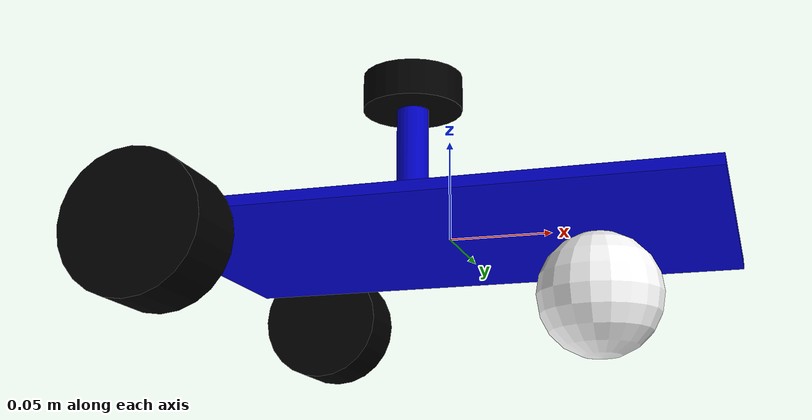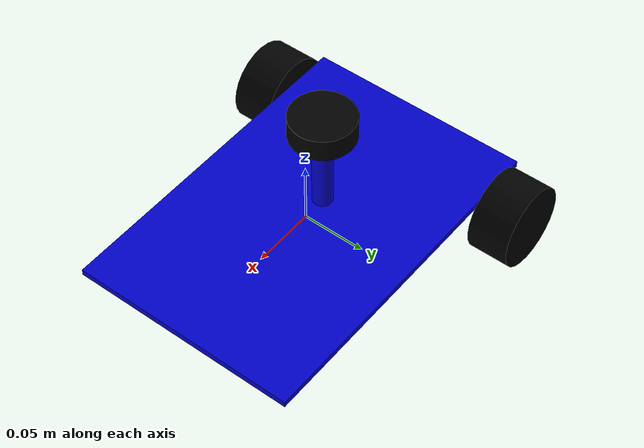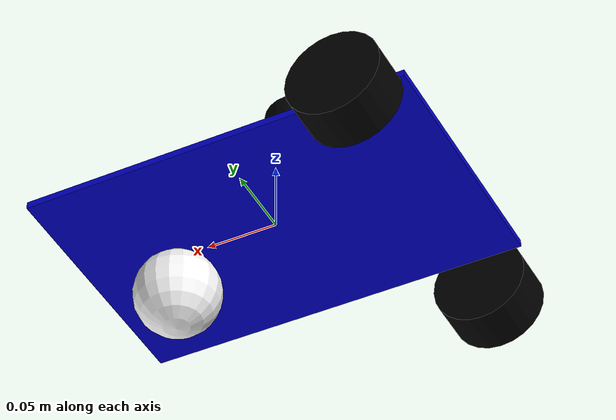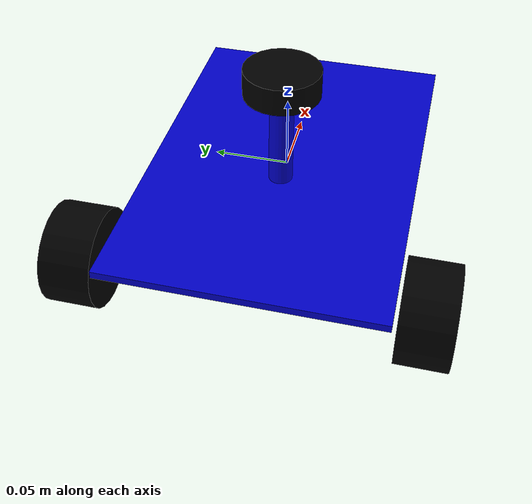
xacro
<?xml version="1.0"?>
<robot name="simple_diff_bot" xmlns:xacro="http://www.ros.org/wiki/xacro">

  <material name="blue"> <color rgba="0 0 0.8 1"/> </material>
  <material name="black"> <color rgba="0 0 0 1"/> </material>
  <material name="white"> <color rgba="1 1 1 1"/> </material>

  <link name="base_link">
    <visual>
      <geometry>
        <box size="0.2707 0.18 0.005"/>
      </geometry>
      <material name="blue"/>
    </visual>
    <collision>
      <geometry>
        <box size="0.2707 0.18 0.005"/>
      </geometry>
    </collision>
    <inertial>
      <mass value="5.0"/>
      <inertia ixx="0.0416" ixy="0" ixz="0" iyy="0.0708" iyz="0" izz="0.1041"/>
    </inertial>
  </link>

  <link name="left_wheel">
    <visual>
      <origin rpy="1.5708 0 0" xyz="0 0 0"/> <geometry>
        <cylinder radius="0.0325" length="0.033"/>
      </geometry>
      <material name="black"/>
    </visual>
    <collision>
      <origin rpy="1.5708 0 0" xyz="0 0 0"/>
      <geometry>
        <cylinder radius="0.0325" length="0.033"/>
      </geometry>
    </collision>
    <inertial>
      <mass value="0.5"/>
      <inertia ixx="0.00037" ixy="0" ixz="0" iyy="0.00037" iyz="0" izz="0.000625"/>
    </inertial>
  </link>

  <joint name="left_wheel_joint" type="continuous">
    <parent link="base_link"/>
    <child link="left_wheel"/>
    <origin xyz="-0.10285 0.109 -0.0165" rpy="0 0 0"/> <axis xyz="0 1 0"/>
  </joint>

  <link name="right_wheel">
    <visual>
      <origin rpy="1.5708 0 0" xyz="0 0 0"/>
      <geometry>
        <cylinder radius="0.0325" length="0.033"/>
      </geometry>
      <material name="black"/>
    </visual>
    <collision>
      <origin rpy="1.5708 0 0" xyz="0 0 0"/>
      <geometry>
        <cylinder radius="0.0325" length="0.033"/>
      </geometry>
    </collision>
    <inertial>
      <mass value="0.5"/>
      <inertia ixx="0.00037" ixy="0" ixz="0" iyy="0.00037" iyz="0" izz="0.000625"/>
    </inertial>
  </link>

  <joint name="right_wheel_joint" type="continuous">
    <parent link="base_link"/>
    <child link="right_wheel"/>
    <origin xyz="-0.10285 -0.109 -0.0165" rpy="0 0 0"/> <axis xyz="0 1 0"/>
  </joint>

  <link name="caster_wheel">
    <visual>
      <geometry>
        <sphere radius="0.03"/>
      </geometry>
      <material name="white"/>
    </visual>
    <collision>
      <geometry>
        <sphere radius="0.025"/>
      </geometry>
    </collision>
    <inertial>
      <mass value="0.2"/>
      <inertia ixx="0.0002" ixy="0" ixz="0" iyy="0.0002" iyz="0" izz="0.0002"/>
    </inertial>
  </link>

  <joint name="caster_joint" type="fixed">
    <parent link="base_link"/>
    <child link="caster_wheel"/>
    <origin xyz="0.072 0 -0.0315" rpy="0 0 0"/>
  </joint>

    <link name="laser_cylinder_link">
    <visual>
      <origin rpy="0 0 0" xyz="0 0 0"/> <geometry>
        <cylinder radius="0.008" length="0.066"/>
      </geometry>
      <material name="blue"/>
    </visual>
    <collision>
      <origin rpy="0 0 0" xyz="0 0 0"/>
      <geometry>
        <cylinder radius="0.008" length="0.066"/>
      </geometry>
    </collision>
    <inertial>
      <mass value="0.5"/>
      <inertia ixx="0.00037" ixy="0" ixz="0" iyy="0.00037" iyz="0" izz="0.000625"/>
    </inertial>
  </link>

  <joint name="laser_cylinder_joint" type="fixed">
    <parent link="base_link"/>
    <child link="laser_cylinder_link"/>
    <origin xyz="-0.01935 0 0.0355" rpy="0 0 0"/> <axis xyz="0 1 0"/>
  </joint>

      <link name="laser_link">
    <visual>
      <origin rpy="0 0 0" xyz="0 0 0"/> <geometry>
        <cylinder radius="0.025" length="0.018"/>
      </geometry>
      <material name="black"/>
    </visual>
    <collision>
      <origin rpy="0 0 0" xyz="0 0 0"/>
      <geometry>
        <cylinder radius="0.025" length="0.018"/>
      </geometry>
    </collision>
    <inertial>
      <mass value="0.5"/>
      <inertia ixx="0.00037" ixy="0" ixz="0" iyy="0.00037" iyz="0" izz="0.000625"/>
    </inertial>
  </link>

  <joint name="laser_joint" type="fixed">
    <parent link="laser_cylinder_link"/>
    <child link="laser_link"/>
    <origin xyz="0 0 0.042" rpy="0 0 0"/> <axis xyz="0 1 0"/>
  </joint>

  <gazebo>
    <plugin
      filename="gz-sim-diff-drive-system"
      name="gz::sim::systems::DiffDrive">
      <left_joint>left_wheel_joint</left_joint>
      <right_joint>right_wheel_joint</right_joint>

      <wheel_separation>0.34</wheel_separation>
      <wheel_radius>0.035</wheel_radius>

      <topic>cmd_vel</topic>

      <odom_topic>odom</odom_topic>
      <tf_topic>/tf</tf_topic>
      <frame_id>odom</frame_id>
      <child_frame_id>base_link</child_frame_id>
    </plugin>
  </gazebo>

  <gazebo reference="caster_wheel">
    <mu1>0.01</mu1>
    <mu2>0.01</mu2>
  </gazebo>

</robot>
